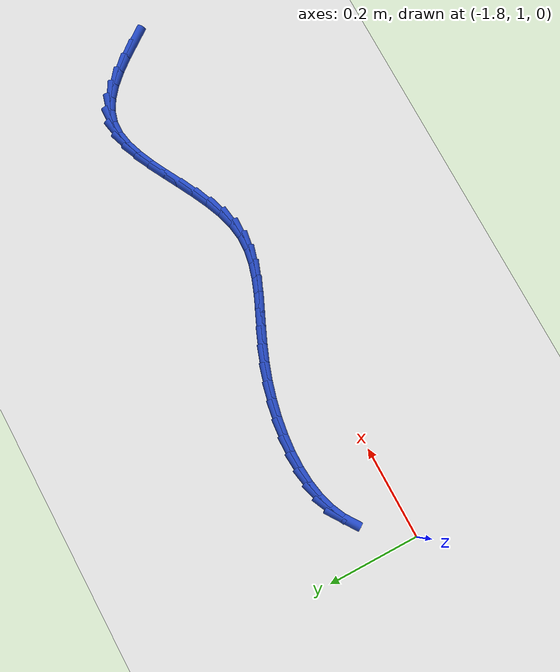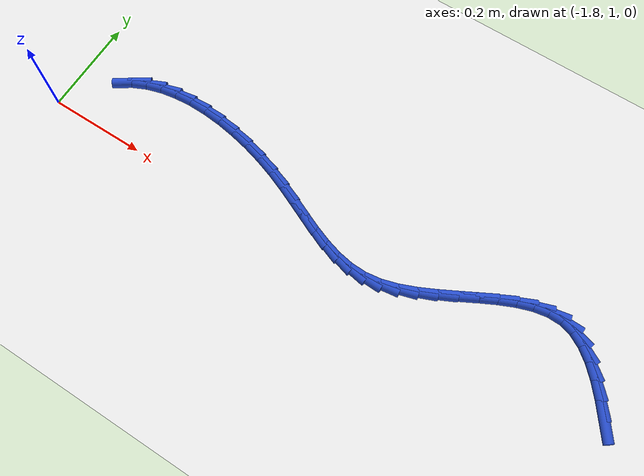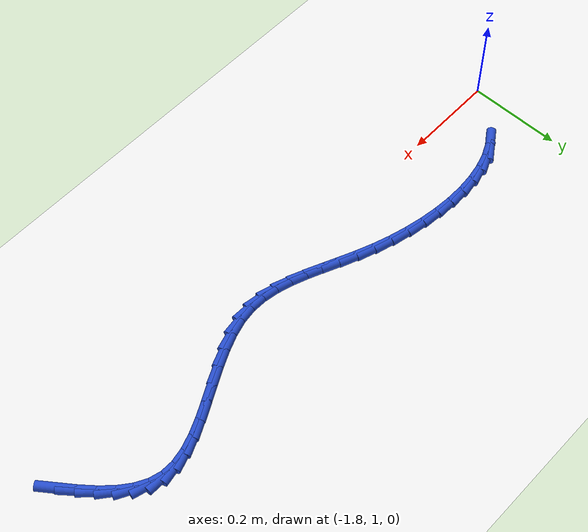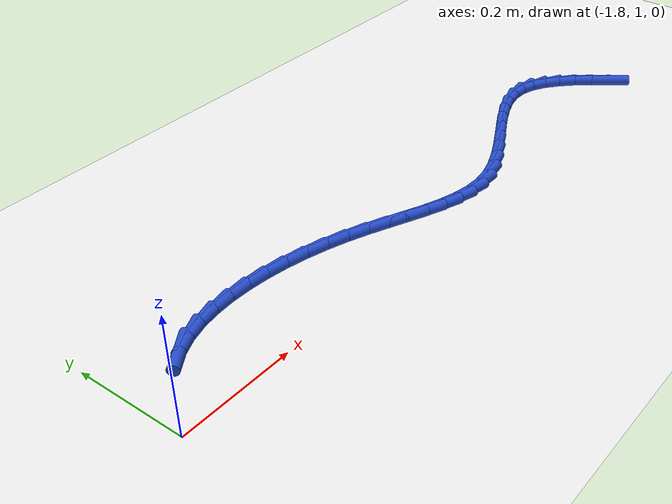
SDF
<sdf version="1.6">
 <world name="default">
  <model name="ground_plane">
   <static>1</static>
   <link name="link">
    <collision name="collision">
     <geometry><plane><normal>0 0 1</normal><size>100 100</size></plane></geometry>
     <surface><friction><ode><mu>100</mu><mu2>50</mu2></ode></friction></surface>
    </collision>
    <visual name="visual">
     <cast_shadows>0</cast_shadows>
     <geometry><plane><normal>0 0 1</normal><size>100 100</size></plane></geometry>
     <material>
      <script><uri>file://media/materials/scripts/gazebo.material</uri><name>Gazebo/WhiteGlow</name></script>
     </material>
    </visual>
   </link>
  </model>
  <model name="line">
   <link name="link_35">
    <pose>-0.5867907636910692 1.023305644512313 0.01 0 1.57 -0.9336234096131805</pose>
    <collision name="collision">
     <geometry><cylinder><radius>0.01</radius><length>0.08</length></cylinder></geometry>
    </collision>
    <visual name="visual">
     <material>
      <script><name>Gazebo/Blue</name><uri>file://media/materials/scripts/gazebo.material</uri></script>
     </material>
     <geometry><cylinder><radius>0.01</radius><length>0.08</length></cylinder></geometry>
    </visual>
   </link>
   <link name="link_36">
    <pose>-0.6090298959267152 1.053352079039315 0.01 0 1.57 -0.8812582470908706</pose>
    <collision name="collision">
     <geometry><cylinder><radius>0.01</radius><length>0.08</length></cylinder></geometry>
    </collision>
    <visual name="visual">
     <material>
      <script><name>Gazebo/Blue</name><uri>file://media/materials/scripts/gazebo.material</uri></script>
     </material>
     <geometry><cylinder><radius>0.01</radius><length>0.08</length></cylinder></geometry>
    </visual>
   </link>
   <link name="link_37">
    <pose>-0.6317119864779592 1.0808601987925353 0.01 0 1.57 -0.7989773413859008</pose>
    <collision name="collision">
     <geometry><cylinder><radius>0.01</radius><length>0.08</length></cylinder></geometry>
    </collision>
    <visual name="visual">
     <material>
      <script><name>Gazebo/Blue</name><uri>file://media/materials/scripts/gazebo.material</uri></script>
     </material>
     <geometry><cylinder><radius>0.01</radius><length>0.08</length></cylinder></geometry>
    </visual>
   </link>
   <link name="link_38">
    <pose>-0.6550639465907696 1.104855130294304 0.01 0 1.57 -0.6774477252845166</pose>
    <collision name="collision">
     <geometry><cylinder><radius>0.01</radius><length>0.08</length></cylinder></geometry>
    </collision>
    <visual name="visual">
     <material>
      <script><name>Gazebo/Blue</name><uri>file://media/materials/scripts/gazebo.material</uri></script>
     </material>
     <geometry><cylinder><radius>0.01</radius><length>0.08</length></cylinder></geometry>
    </visual>
   </link>
   <link name="link_39">
    <pose>-0.6793126875111155 1.124362000066952 0.01 0 1.57 -0.5055352162435752</pose>
    <collision name="collision">
     <geometry><cylinder><radius>0.01</radius><length>0.08</length></cylinder></geometry>
    </collision>
    <visual name="visual">
     <material>
      <script><name>Gazebo/Blue</name><uri>file://media/materials/scripts/gazebo.material</uri></script>
     </material>
     <geometry><cylinder><radius>0.01</radius><length>0.08</length></cylinder></geometry>
    </visual>
   </link>
   <link name="link_40">
    <pose>-0.704685120484966 1.13840593463281 0.01 0 1.57 -0.2772951215703346</pose>
    <collision name="collision">
     <geometry><cylinder><radius>0.01</radius><length>0.08</length></cylinder></geometry>
    </collision>
    <visual name="visual">
     <material>
      <script><name>Gazebo/Blue</name><uri>file://media/materials/scripts/gazebo.material</uri></script>
     </material>
     <geometry><cylinder><radius>0.01</radius><length>0.08</length></cylinder></geometry>
    </visual>
   </link>
   <link name="link_41">
    <pose>-0.7314081567582897 1.146012060514208 0.01 0 1.57 -0.018709795645509186</pose>
    <collision name="collision">
     <geometry><cylinder><radius>0.01</radius><length>0.08</length></cylinder></geometry>
    </collision>
    <visual name="visual">
     <material>
      <script><name>Gazebo/Blue</name><uri>file://media/materials/scripts/gazebo.material</uri></script>
     </material>
     <geometry><cylinder><radius>0.01</radius><length>0.08</length></cylinder></geometry>
    </visual>
   </link>
   <link name="link_42">
    <pose>-0.7596430529703271 1.14654039130238 0.01 0 1.57 0.18999562240228327</pose>
    <collision name="collision">
     <geometry><cylinder><radius>0.01</radius><length>0.08</length></cylinder></geometry>
    </collision>
    <visual name="visual">
     <material>
      <script><name>Gazebo/Blue</name><uri>file://media/materials/scripts/gazebo.material</uri></script>
     </material>
     <geometry><cylinder><radius>0.01</radius><length>0.08</length></cylinder></geometry>
    </visual>
   </link>
   <link name="link_43">
    <pose>-0.7892581647887804 1.1408449522462987 0.01 0 1.57 0.3330526460474649</pose>
    <collision name="collision">
     <geometry><cylinder><radius>0.01</radius><length>0.08</length></cylinder></geometry>
    </collision>
    <visual name="visual">
     <material>
      <script><name>Gazebo/Blue</name><uri>file://media/materials/scripts/gazebo.material</uri></script>
     </material>
     <geometry><cylinder><radius>0.01</radius><length>0.08</length></cylinder></geometry>
    </visual>
   </link>
   <link name="link_44">
    <pose>-0.8200401989148011 1.1301962387323627 0.01 0 1.57 0.4241745491738958</pose>
    <collision name="collision">
     <geometry><cylinder><radius>0.01</radius><length>0.08</length></cylinder></geometry>
    </collision>
    <visual name="visual">
     <material>
      <script><name>Gazebo/Blue</name><uri>file://media/materials/scripts/gazebo.material</uri></script>
     </material>
     <geometry><cylinder><radius>0.01</radius><length>0.08</length></cylinder></geometry>
    </visual>
   </link>
   <link name="link_45">
    <pose>-0.8517758585257734 1.1158647641207946 0.01 0 1.57 0.47602775585244717</pose>
    <collision name="collision">
     <geometry><cylinder><radius>0.01</radius><length>0.08</length></cylinder></geometry>
    </collision>
    <visual name="visual">
     <material>
      <script><name>Gazebo/Blue</name><uri>file://media/materials/scripts/gazebo.material</uri></script>
     </material>
     <geometry><cylinder><radius>0.01</radius><length>0.08</length></cylinder></geometry>
    </visual>
   </link>
   <link name="link_46">
    <pose>-0.8842518467990811 1.099121041771816 0.01 0 1.57 0.4966293739215362</pose>
    <collision name="collision">
     <geometry><cylinder><radius>0.01</radius><length>0.08</length></cylinder></geometry>
    </collision>
    <visual name="visual">
     <material>
      <script><name>Gazebo/Blue</name><uri>file://media/materials/scripts/gazebo.material</uri></script>
     </material>
     <geometry><cylinder><radius>0.01</radius><length>0.08</length></cylinder></geometry>
    </visual>
   </link>
   <link name="link_47">
    <pose>-0.9172548669121082 1.0812355850456496 0.01 0 1.57 0.4896708296371982</pose>
    <collision name="collision">
     <geometry><cylinder><radius>0.01</radius><length>0.08</length></cylinder></geometry>
    </collision>
    <visual name="visual">
     <material>
      <script><name>Gazebo/Blue</name><uri>file://media/materials/scripts/gazebo.material</uri></script>
     </material>
     <geometry><cylinder><radius>0.01</radius><length>0.08</length></cylinder></geometry>
    </visual>
   </link>
   <link name="link_48">
    <pose>-0.9505716220422389 1.0634789073025175 0.01 0 1.57 0.45520439621556347</pose>
    <collision name="collision">
     <geometry><cylinder><radius>0.01</radius><length>0.08</length></cylinder></geometry>
    </collision>
    <visual name="visual">
     <material>
      <script><name>Gazebo/Blue</name><uri>file://media/materials/scripts/gazebo.material</uri></script>
     </material>
     <geometry><cylinder><radius>0.01</radius><length>0.08</length></cylinder></geometry>
    </visual>
   </link>
   <link name="link_49">
    <pose>-0.9839888153668571 1.0471215219026417 0.01 0 1.57 0.3899401300883945</pose>
    <collision name="collision">
     <geometry><cylinder><radius>0.01</radius><length>0.08</length></cylinder></geometry>
    </collision>
    <visual name="visual">
     <material>
      <script><name>Gazebo/Blue</name><uri>file://media/materials/scripts/gazebo.material</uri></script>
     </material>
     <geometry><cylinder><radius>0.01</radius><length>0.08</length></cylinder></geometry>
    </visual>
   </link>
   <link name="link_50">
    <pose>-1.0172931500633462 1.0334339422062448 0.01 0 1.57 0.28738485203527775</pose>
    <collision name="collision">
     <geometry><cylinder><radius>0.01</radius><length>0.08</length></cylinder></geometry>
    </collision>
    <visual name="visual">
     <material>
      <script><name>Gazebo/Blue</name><uri>file://media/materials/scripts/gazebo.material</uri></script>
     </material>
     <geometry><cylinder><radius>0.01</radius><length>0.08</length></cylinder></geometry>
    </visual>
   </link>
   <link name="link_51">
    <pose>-1.0502713293090908 1.0236866815735488 0.01 0 1.57 0.13985838433105413</pose>
    <collision name="collision">
     <geometry><cylinder><radius>0.01</radius><length>0.08</length></cylinder></geometry>
    </collision>
    <visual name="visual">
     <material>
      <script><name>Gazebo/Blue</name><uri>file://media/materials/scripts/gazebo.material</uri></script>
     </material>
     <geometry><cylinder><radius>0.01</radius><length>0.08</length></cylinder></geometry>
    </visual>
   </link>
   <link name="link_52">
    <pose>-1.082716747532836 1.0191190976871956 0.01 0 1.57 -0.027836465849046955</pose>
    <collision name="collision">
     <geometry><cylinder><radius>0.01</radius><length>0.08</length></cylinder></geometry>
    </collision>
    <visual name="visual">
     <material>
      <script><name>Gazebo/Blue</name><uri>file://media/materials/scripts/gazebo.material</uri></script>
     </material>
     <geometry><cylinder><radius>0.01</radius><length>0.08</length></cylinder></geometry>
    </visual>
   </link>
   <link name="link_53">
    <pose>-1.1146295952741725 1.0200076681038566 0.01 0 1.57 -0.172135095002909</pose>
    <collision name="collision">
     <geometry><cylinder><radius>0.01</radius><length>0.08</length></cylinder></geometry>
    </collision>
    <visual name="visual">
     <material>
      <script><name>Gazebo/Blue</name><uri>file://media/materials/scripts/gazebo.material</uri></script>
     </material>
     <geometry><cylinder><radius>0.01</radius><length>0.08</length></cylinder></geometry>
    </visual>
   </link>
   <link name="link_54">
    <pose>-1.146251372004763 1.0255052923111299 0.01 0 1.57 -0.28331267687313844</pose>
    <collision name="collision">
     <geometry><cylinder><radius>0.01</radius><length>0.08</length></cylinder></geometry>
    </collision>
    <visual name="visual">
     <material>
      <script><name>Gazebo/Blue</name><uri>file://media/materials/scripts/gazebo.material</uri></script>
     </material>
     <geometry><cylinder><radius>0.01</radius><length>0.08</length></cylinder></geometry>
    </visual>
   </link>
   <link name="link_55">
    <pose>-1.1778372225994858 1.0347013343291769 0.01 0 1.57 -0.36033883460108596</pose>
    <collision name="collision">
     <geometry><cylinder><radius>0.01</radius><length>0.08</length></cylinder></geometry>
    </collision>
    <visual name="visual">
     <material>
      <script><name>Gazebo/Blue</name><uri>file://media/materials/scripts/gazebo.material</uri></script>
     </material>
     <geometry><cylinder><radius>0.01</radius><length>0.08</length></cylinder></geometry>
    </visual>
   </link>
   <link name="link_56">
    <pose>-1.2096422919332206 1.0466851581781602 0.01 0 1.57 -0.4055963156021776</pose>
    <collision name="collision">
     <geometry><cylinder><radius>0.01</radius><length>0.08</length></cylinder></geometry>
    </collision>
    <visual name="visual">
     <material>
      <script><name>Gazebo/Blue</name><uri>file://media/materials/scripts/gazebo.material</uri></script>
     </material>
     <geometry><cylinder><radius>0.01</radius><length>0.08</length></cylinder></geometry>
    </visual>
   </link>
   <link name="link_57">
    <pose>-1.2419217248808445 1.0605461278782409 0.01 0 1.57 -0.422184994766495</pose>
    <collision name="collision">
     <geometry><cylinder><radius>0.01</radius><length>0.08</length></cylinder></geometry>
    </collision>
    <visual name="visual">
     <material>
      <script><name>Gazebo/Blue</name><uri>file://media/materials/scripts/gazebo.material</uri></script>
     </material>
     <geometry><cylinder><radius>0.01</radius><length>0.08</length></cylinder></geometry>
    </visual>
   </link>
   <link name="link_58">
    <pose>-1.2749306663172373 1.0753736074495817 0.01 0 1.57 -0.4126858574819426</pose>
    <collision name="collision">
     <geometry><cylinder><radius>0.01</radius><length>0.08</length></cylinder></geometry>
    </collision>
    <visual name="visual">
     <material>
      <script><name>Gazebo/Blue</name><uri>file://media/materials/scripts/gazebo.material</uri></script>
     </material>
     <geometry><cylinder><radius>0.01</radius><length>0.08</length></cylinder></geometry>
    </visual>
   </link>
   <link name="link_59">
    <pose>-1.3089242611172764 1.090256960912344 0.01 0 1.57 -0.37892236059137874</pose>
    <collision name="collision">
     <geometry><cylinder><radius>0.01</radius><length>0.08</length></cylinder></geometry>
    </collision>
    <visual name="visual">
     <material>
      <script><name>Gazebo/Blue</name><uri>file://media/materials/scripts/gazebo.material</uri></script>
     </material>
     <geometry><cylinder><radius>0.01</radius><length>0.08</length></cylinder></geometry>
    </visual>
   </link>
   <link name="link_60">
    <pose>-1.344157604235979 1.104285599270153 0.01 0 1.57 -0.32696385369625136</pose>
    <collision name="collision">
     <geometry><cylinder><radius>0.01</radius><length>0.08</length></cylinder></geometry>
    </collision>
    <visual name="visual">
     <material>
      <script><name>Gazebo/Blue</name><uri>file://media/materials/scripts/gazebo.material</uri></script>
     </material>
     <geometry><cylinder><radius>0.01</radius><length>0.08</length></cylinder></geometry>
    </visual>
   </link>
   <link name="link_61">
    <pose>-1.3807354236881495 1.116690455540456 0.01 0 1.57 -0.2718424058874159</pose>
    <collision name="collision">
     <geometry><cylinder><radius>0.01</radius><length>0.08</length></cylinder></geometry>
    </collision>
    <visual name="visual">
     <material>
      <script><name>Gazebo/Blue</name><uri>file://media/materials/scripts/gazebo.material</uri></script>
     </material>
     <geometry><cylinder><radius>0.01</radius><length>0.08</length></cylinder></geometry>
    </visual>
   </link>
   <link name="link_62">
    <pose>-1.4182806560998003 1.127155914061116 0.01 0 1.57 -0.21485546204883496</pose>
    <collision name="collision">
     <geometry><cylinder><radius>0.01</radius><length>0.08</length></cylinder></geometry>
    </collision>
    <visual name="visual">
     <material>
      <script><name>Gazebo/Blue</name><uri>file://media/materials/scripts/gazebo.material</uri></script>
     </material>
     <geometry><cylinder><radius>0.01</radius><length>0.08</length></cylinder></geometry>
    </visual>
   </link>
   <link name="link_63">
    <pose>-1.4563199418411725 1.1354569910603662 0.01 0 1.57 -0.15409482429747445</pose>
    <collision name="collision">
     <geometry><cylinder><radius>0.01</radius><length>0.08</length></cylinder></geometry>
    </collision>
    <visual name="visual">
     <material>
      <script><name>Gazebo/Blue</name><uri>file://media/materials/scripts/gazebo.material</uri></script>
     </material>
     <geometry><cylinder><radius>0.01</radius><length>0.08</length></cylinder></geometry>
    </visual>
   </link>
   <link name="link_64">
    <pose>-1.4943799212825049 1.1413687027664399 0.01 0 1.57 -0.08745511263471947</pose>
    <collision name="collision">
     <geometry><cylinder><radius>0.01</radius><length>0.08</length></cylinder></geometry>
    </collision>
    <visual name="visual">
     <material>
      <script><name>Gazebo/Blue</name><uri>file://media/materials/scripts/gazebo.material</uri></script>
     </material>
     <geometry><cylinder><radius>0.01</radius><length>0.08</length></cylinder></geometry>
    </visual>
   </link>
   <link name="link_65">
    <pose>-1.5319872347940378 1.1446660654075707 0.01 0 1.57 -0.01248609378448818</pose>
    <collision name="collision">
     <geometry><cylinder><radius>0.01</radius><length>0.08</length></cylinder></geometry>
    </collision>
    <visual name="visual">
     <material>
      <script><name>Gazebo/Blue</name><uri>file://media/materials/scripts/gazebo.material</uri></script>
     </material>
     <geometry><cylinder><radius>0.01</radius><length>0.08</length></cylinder></geometry>
    </visual>
   </link>
   <link name="link_66">
    <pose>-1.5686685227460118 1.1451240952119919 0.01 0 1.57 0.07373643068246821</pose>
    <collision name="collision">
     <geometry><cylinder><radius>0.01</radius><length>0.08</length></cylinder></geometry>
    </collision>
    <visual name="visual">
     <material>
      <script><name>Gazebo/Blue</name><uri>file://media/materials/scripts/gazebo.material</uri></script>
     </material>
     <geometry><cylinder><radius>0.01</radius><length>0.08</length></cylinder></geometry>
    </visual>
   </link>
   <link name="link_67">
    <pose>-1.6039504255086665 1.1425178084079373 0.01 0 1.57 0.17466794436842395</pose>
    <collision name="collision">
     <geometry><cylinder><radius>0.01</radius><length>0.08</length></cylinder></geometry>
    </collision>
    <visual name="visual">
     <material>
      <script><name>Gazebo/Blue</name><uri>file://media/materials/scripts/gazebo.material</uri></script>
     </material>
     <geometry><cylinder><radius>0.01</radius><length>0.08</length></cylinder></geometry>
    </visual>
   </link>
   <link name="link_68">
    <pose>-1.637359583452242 1.1366222212236399 0.01 0 1.57 0.2941409421928584</pose>
    <collision name="collision">
     <geometry><cylinder><radius>0.01</radius><length>0.08</length></cylinder></geometry>
    </collision>
    <visual name="visual">
     <material>
      <script><name>Gazebo/Blue</name><uri>file://media/materials/scripts/gazebo.material</uri></script>
     </material>
     <geometry><cylinder><radius>0.01</radius><length>0.08</length></cylinder></geometry>
    </visual>
   </link>
   <link name="link_69">
    <pose>-1.6684226369469783 1.127212349887333 0.01 0 1.57 0.4357195800863377</pose>
    <collision name="collision">
     <geometry><cylinder><radius>0.01</radius><length>0.08</length></cylinder></geometry>
    </collision>
    <visual name="visual">
     <material>
      <script><name>Gazebo/Blue</name><uri>file://media/materials/scripts/gazebo.material</uri></script>
     </material>
     <geometry><cylinder><radius>0.01</radius><length>0.08</length></cylinder></geometry>
    </visual>
   </link>
   <link name="link_70">
    <pose>-1.6966662263631158 1.1140632106272508 0.01 0 1.57 0.6011908157689687</pose>
    <collision name="collision">
     <geometry><cylinder><radius>0.01</radius><length>0.08</length></cylinder></geometry>
    </collision>
    <visual name="visual">
     <material>
      <script><name>Gazebo/Blue</name><uri>file://media/materials/scripts/gazebo.material</uri></script>
     </material>
     <geometry><cylinder><radius>0.01</radius><length>0.08</length></cylinder></geometry>
    </visual>
   </link>
  </model>
 </world>
</sdf>
